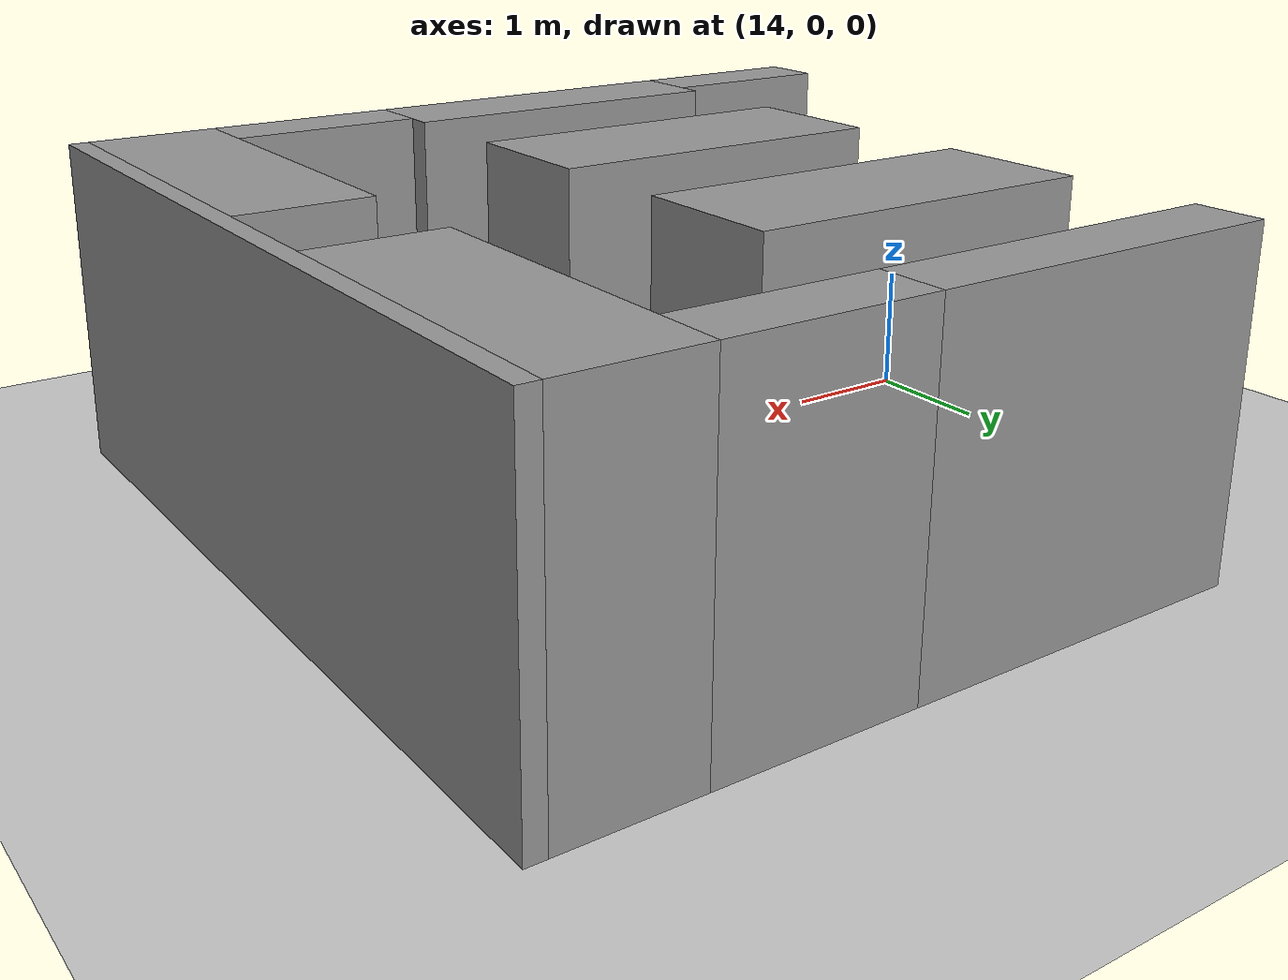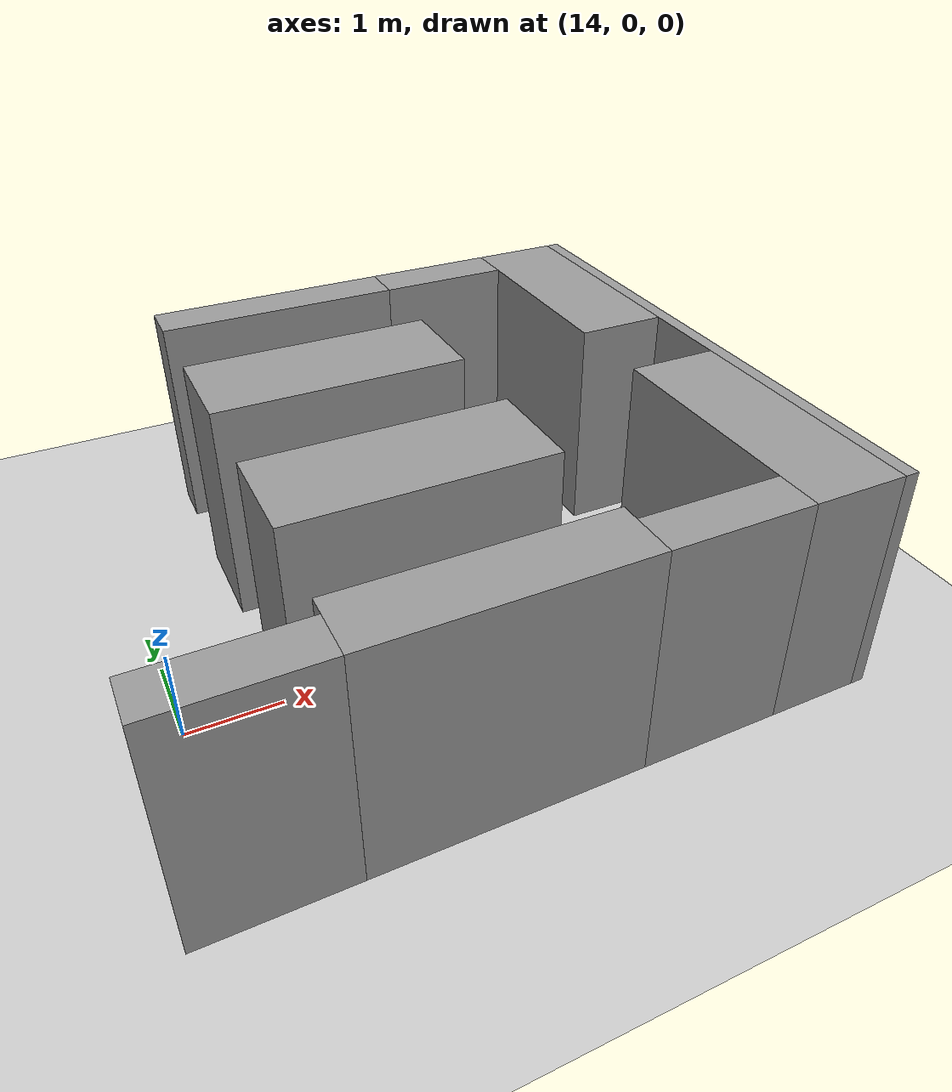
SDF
<sdf version="1.7">
 <world name="default">
  <model name="ground_plane">
   <static>1</static>
   <link name="link">
    <collision name="collision">
     <geometry><plane><normal>0 0 1</normal><size>100 100</size></plane></geometry>
     <surface>
      <contact><collide_bitmask>65535</collide_bitmask></contact>
      <friction><ode><mu>100</mu><mu2>50</mu2></ode></friction>
     </surface>
    </collision>
    <visual name="visual">
     <cast_shadows>0</cast_shadows>
     <geometry><plane><normal>0 0 1</normal><size>100 100</size></plane></geometry>
     <material>
      <script><uri>file://media/materials/scripts/gazebo.material</uri><name>Gazebo/Grey</name></script>
     </material>
    </visual>
   </link>
  </model>
  <model name="branch_wall_3">
   <static>1</static>
   <pose>14.250 -2.050 1.250 0 0 0</pose>
   <link name="link">
    <collision name="collision"><geometry><box><size>1.500 0.500 2.50</size></box></geometry></collision>
    <visual name="visual">
     <geometry><box><size>1.500 0.500 2.50</size></box></geometry>
     <material>
      <script><uri>file://media/materials/scripts/gazebo.material</uri><name>Gazebo/Grey</name></script>
     </material>
    </visual>
   </link>
  </model>
  <model name="branch_wall_4">
   <static>1</static>
   <pose>16.375 3.950 1.250 0 0 0</pose>
   <link name="link">
    <collision name="collision"><geometry><box><size>2.750 0.500 2.50</size></box></geometry></collision>
    <visual name="visual">
     <geometry><box><size>2.750 0.500 2.50</size></box></geometry>
     <material>
      <script><uri>file://media/materials/scripts/gazebo.material</uri><name>Gazebo/Grey</name></script>
     </material>
    </visual>
   </link>
  </model>
  <model name="branch_wall_5">
   <static>1</static>
   <pose>16.375 2.125 1.250 0 0 0</pose>
   <link name="link">
    <collision name="collision"><geometry><box><size>2.750 1.150 2.50</size></box></geometry></collision>
    <visual name="visual">
     <geometry><box><size>2.750 1.150 2.50</size></box></geometry>
     <material>
      <script><uri>file://media/materials/scripts/gazebo.material</uri><name>Gazebo/Grey</name></script>
     </material>
    </visual>
   </link>
  </model>
  <model name="branch_wall_6">
   <static>1</static>
   <pose>16.375 -0.025 1.250 0 0 0</pose>
   <link name="link">
    <collision name="collision"><geometry><box><size>2.750 1.150 2.50</size></box></geometry></collision>
    <visual name="visual">
     <geometry><box><size>2.750 1.150 2.50</size></box></geometry>
     <material>
      <script><uri>file://media/materials/scripts/gazebo.material</uri><name>Gazebo/Grey</name></script>
     </material>
    </visual>
   </link>
  </model>
  <model name="branch_wall_7">
   <static>1</static>
   <pose>16.375 -1.950 1.250 0 0 0</pose>
   <link name="link">
    <collision name="collision"><geometry><box><size>2.750 0.700 2.50</size></box></geometry></collision>
    <visual name="visual">
     <geometry><box><size>2.750 0.700 2.50</size></box></geometry>
     <material>
      <script><uri>file://media/materials/scripts/gazebo.material</uri><name>Gazebo/Grey</name></script>
     </material>
    </visual>
   </link>
  </model>
  <model name="branch_wall_8">
   <static>1</static>
   <pose>18.500 3.950 1.250 0 0 0</pose>
   <link name="link">
    <collision name="collision"><geometry><box><size>1.500 0.500 2.50</size></box></geometry></collision>
    <visual name="visual">
     <geometry><box><size>1.500 0.500 2.50</size></box></geometry>
     <material>
      <script><uri>file://media/materials/scripts/gazebo.material</uri><name>Gazebo/Grey</name></script>
     </material>
    </visual>
   </link>
  </model>
  <model name="branch_wall_9">
   <static>1</static>
   <pose>18.500 -2.050 1.250 0 0 0</pose>
   <link name="link">
    <collision name="collision"><geometry><box><size>1.500 0.500 2.50</size></box></geometry></collision>
    <visual name="visual">
     <geometry><box><size>1.500 0.500 2.50</size></box></geometry>
     <material>
      <script><uri>file://media/materials/scripts/gazebo.material</uri><name>Gazebo/Grey</name></script>
     </material>
    </visual>
   </link>
  </model>
  <model name="branch_wall_10">
   <static>1</static>
   <pose>19.750 2.875 1.250 0 0 0</pose>
   <link name="link">
    <collision name="collision"><geometry><box><size>1.000 2.650 2.50</size></box></geometry></collision>
    <visual name="visual">
     <geometry><box><size>1.000 2.650 2.50</size></box></geometry>
     <material>
      <script><uri>file://media/materials/scripts/gazebo.material</uri><name>Gazebo/Grey</name></script>
     </material>
    </visual>
   </link>
  </model>
  <model name="branch_wall_11">
   <static>1</static>
   <pose>19.750 -0.875 1.250 0 0 0</pose>
   <link name="link">
    <collision name="collision"><geometry><box><size>1.000 2.850 2.50</size></box></geometry></collision>
    <visual name="visual">
     <geometry><box><size>1.000 2.850 2.50</size></box></geometry>
     <material>
      <script><uri>file://media/materials/scripts/gazebo.material</uri><name>Gazebo/Grey</name></script>
     </material>
    </visual>
   </link>
  </model>
  <model name="branch_wall_12">
   <static>1</static>
   <pose>20.325 0.950 1.250 0 0 0</pose>
   <link name="link">
    <collision name="collision"><geometry><box><size>0.150 6.500 2.50</size></box></geometry></collision>
    <visual name="visual">
     <geometry><box><size>0.150 6.500 2.50</size></box></geometry>
     <material>
      <script><uri>file://media/materials/scripts/gazebo.material</uri><name>Gazebo/Grey</name></script>
     </material>
    </visual>
   </link>
  </model>
 </world>
</sdf>
